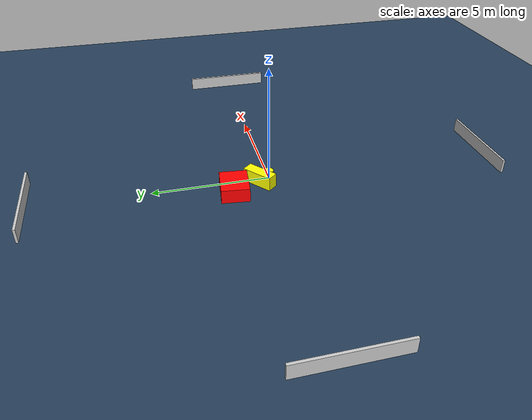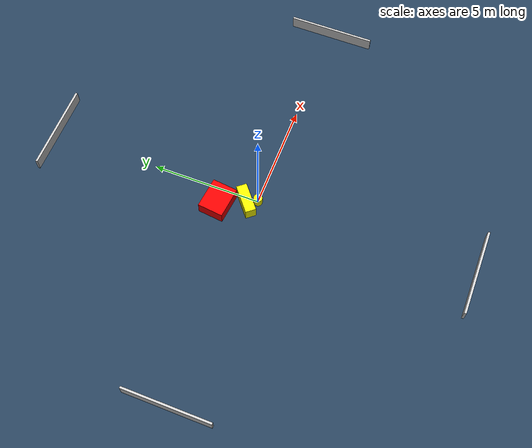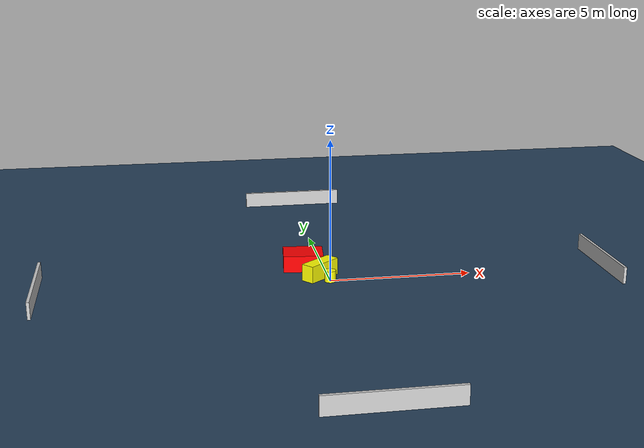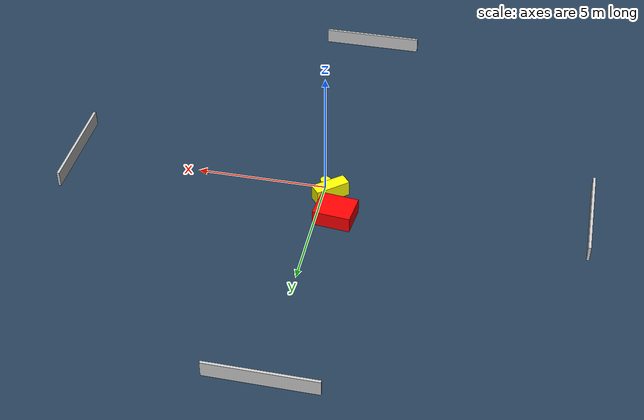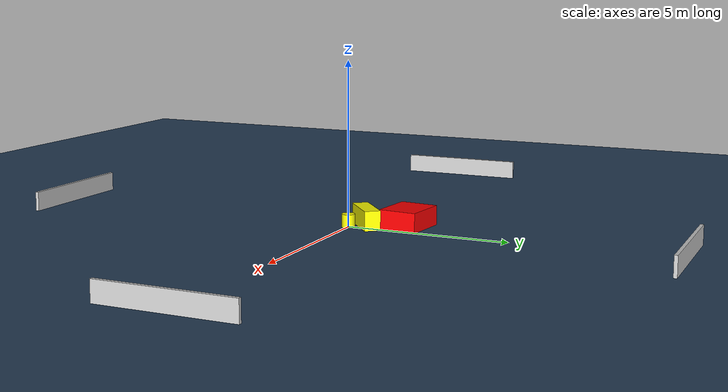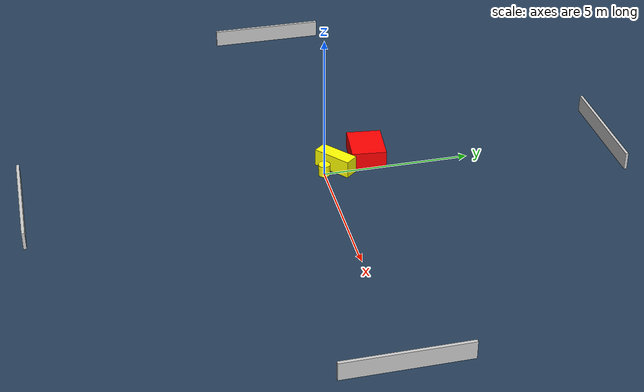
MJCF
<?xml version="1.0" ?>
<mujoco model="generated_environment">
  <option timestep="0.01" integrator="RK4" cone="elliptic"/>
  <default>
    <geom density="1"/>
  </default>
  <asset>
    <texture builtin="gradient" height="3072" name="skybox" rgb1="0.3 0.5 0.7" rgb2="0 0 0" type="skybox" width="512"/>
    <texture builtin="checker" height="300" name="groundplane" rgb1="0.2 0.3 0.4" rgb2="0.1 0.2 0.3" type="2d" width="300"/>
    <material name="groundplane" reflectance="0.2" texrepeat="5 5" texture="groundplane"/>
  </asset>
  <worldbody>
    <light dir="0 0 -1" directional="true" pos="0 0 1.5"/>
    <geom condim="3" friction="0.5 0.005 0.001" material="groundplane" name="floor" pos="0 0 0" size="0 0 0.05" type="plane"/>
    <body name="walls">
      <geom name="wall_1" condim="4" pos="-10.0 0.0 0.3" rgba="0.800000011920929 0.800000011920929 0.800000011920929 1.0" size="0.05 2.0 0.3" type="box"/>
      <geom name="wall_2" condim="4" pos="10.0 0.0 0.3" rgba="0.800000011920929 0.800000011920929 0.800000011920929 1.0" size="0.05 2.0 0.3" type="box"/>
      <geom name="wall_3" condim="4" pos="0.0 -10.0 0.3" rgba="0.800000011920929 0.800000011920929 0.800000011920929 1.0" size="2.0 0.05 0.3" type="box"/>
      <geom name="wall_4" condim="4" pos="0.0 10.0 0.3" rgba="0.800000011920929 0.800000011920929 0.800000011920929 1.0" size="2.0 0.05 0.3" type="box"/>
    </body>
    <body name="robot">
      <joint name="joint_x" type="slide" pos="0 0 0" axis="1 0 0"/>
      <joint name="joint_y" type="slide" pos="0 0 0" axis="0 1 0"/>
      <geom name="robot" type="cylinder" pos="0.0 0.0 0.2" size="0.2 0.2 0.0" mass="5.0" friction="1.0 0.005 0.0001" condim="4" rgba="1.0 1.0 0.0 1.0"/>
    </body>
    <body name="obstacle_1_movable">
      <geom name="obstacle_1_movable" condim="4" pos="-0.28233005934289157 0.4596270144022114 0.3" euler="0 0 219.7741173069535" friction="0.0 0.005 0.001" rgba="1.0 1.0 0.0 1.0" size="0.6770516761843215 0.24431966064530286 0.3" type="box" mass="0.1"/>
      <joint type="free"/>
    </body>
    <body name="obstacle_2_static">
      <geom name="obstacle_2_static" condim="4" pos="-0.7212278173267791 1.640370342234647 0.3" euler="0 0 353.92698485864435" friction="0.0 0.005 0.001" rgba="1.0 0.0 0.0 1.0" size="0.7146476048229227 0.5865611768171135 0.3" type="box"/>
    </body>
  </worldbody>
  <actuator>
    <motor name="actuator_x" joint="joint_x" gear="1" ctrlrange="-1 1"/>
    <motor name="actuator_y" joint="joint_y" gear="1" ctrlrange="-1 1"/>
  </actuator>
</mujoco>
